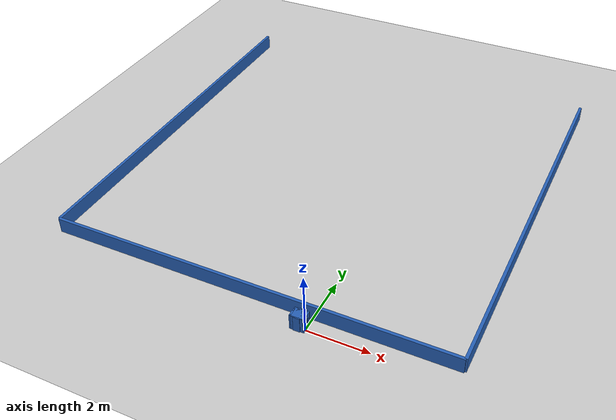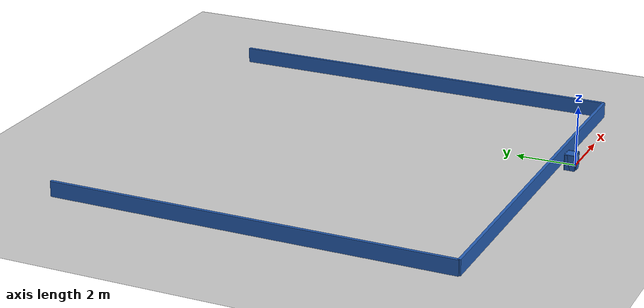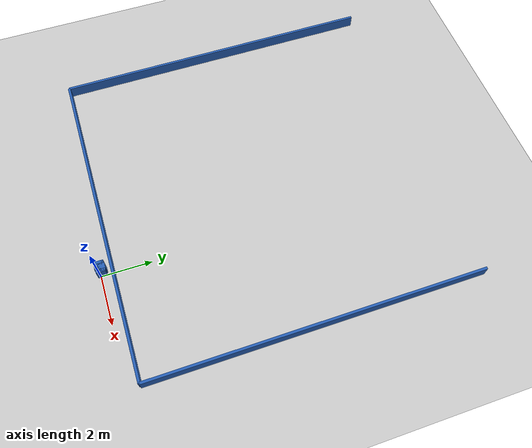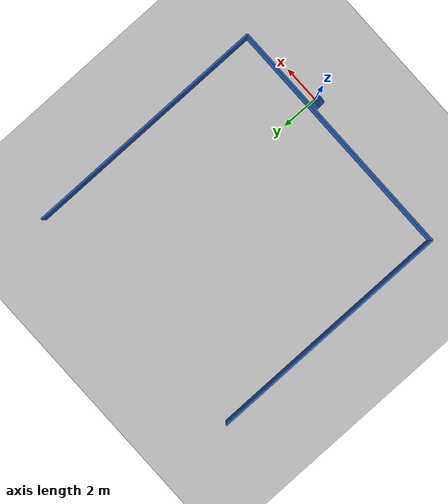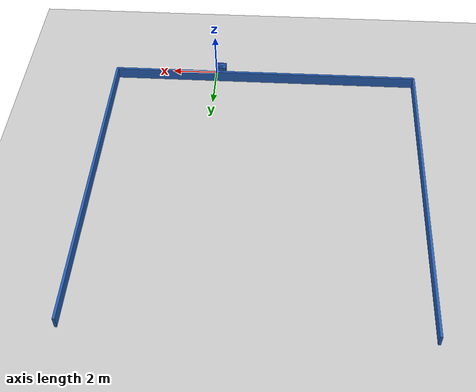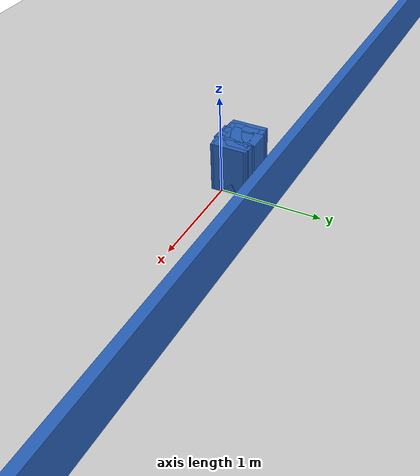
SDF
<?xml version="1.0" ?>
    <sdf version="1.5">
      <world name="default">
        <!-- A global light source -->
        <include>
          <uri>model://sun</uri>
        </include>
        <!-- A ground plane -->
        <include>
          <uri>model://ground_plane</uri>
        </include>

    <model name='libopen_space_final_T2B_61_96'>
      <static>1</static>
      <pose frame=''>-0.225000 0.075000 0.000000 0.000000 0.000000 0.000000</pose>
      <link name='link'>
        <inertial>
          <mass>1</mass>
          <inertia>
            <ixx>0.145833</ixx>
            <ixy>0</ixy>
            <ixz>0</ixz>
            <iyy>0.145833</iyy>
            <iyz>0</iyz>
            <izz>0.125</izz>
          </inertia>
        </inertial>
        <collision name='collision'>
          <geometry>
            <box>
              <size>0.19 0.34 1</size>
            </box>
          </geometry>
          <max_contacts>10</max_contacts>
          <surface>
            <contact>
              <ode/>
            </contact>
            <bounce/>
            <friction>
              <torsional>
                <ode/>
              </torsional>
              <ode/>
            </friction>
          </surface>
        </collision>
        <visual name='visual'>
          <geometry>
            <box>
              <size>0.19 0.34 1</size>
            </box>
          </geometry>
	    <material>
              <ambient>0.152000 0.379000 0.720000 1</ambient>
	      <diffuse>0.152000 0.379000 0.720000 1</diffuse>
          </material>
          <material>
            <script>
              <name>Gazebo/Grey</name>
              <uri>file://media/materials/scripts/gazebo.material</uri>
            </script>
          </material>
        </visual>
        <self_collide>0</self_collide>
        <kinematic>0</kinematic>
        <gravity>1</gravity>
      </link>
      <plugin name='libopen_space_final_T2B_61_96' filename='libopen_space_final_T2B_61_96.so'/>
    </model>

    <model name='libopen_space_final_T2B_99_64'>
      <static>1</static>
      <pose frame=''>-0.225000 0.075000 0.000000 0.000000 0.000000 0.000000</pose>
      <link name='link'>
        <inertial>
          <mass>1</mass>
          <inertia>
            <ixx>0.145833</ixx>
            <ixy>0</ixy>
            <ixz>0</ixz>
            <iyy>0.145833</iyy>
            <iyz>0</iyz>
            <izz>0.125</izz>
          </inertia>
        </inertial>
        <collision name='collision'>
          <geometry>
            <box>
              <size>0.36 0.33 1</size>
            </box>
          </geometry>
          <max_contacts>10</max_contacts>
          <surface>
            <contact>
              <ode/>
            </contact>
            <bounce/>
            <friction>
              <torsional>
                <ode/>
              </torsional>
              <ode/>
            </friction>
          </surface>
        </collision>
        <visual name='visual'>
          <geometry>
            <box>
              <size>0.36 0.33 1</size>
            </box>
          </geometry>
	    <material>
              <ambient>0.152000 0.379000 0.720000 1</ambient>
	      <diffuse>0.152000 0.379000 0.720000 1</diffuse>
          </material>
          <material>
            <script>
              <name>Gazebo/Grey</name>
              <uri>file://media/materials/scripts/gazebo.material</uri>
            </script>
          </material>
        </visual>
        <self_collide>0</self_collide>
        <kinematic>0</kinematic>
        <gravity>1</gravity>
      </link>
      <plugin name='libopen_space_final_T2B_99_64' filename='libopen_space_final_T2B_99_64.so'/>
    </model>

    <model name='libopen_space_final_T2B_81_4'>
      <static>1</static>
      <pose frame=''>-0.225000 0.075000 0.000000 0.000000 0.000000 0.000000</pose>
      <link name='link'>
        <inertial>
          <mass>1</mass>
          <inertia>
            <ixx>0.145833</ixx>
            <ixy>0</ixy>
            <ixz>0</ixz>
            <iyy>0.145833</iyy>
            <iyz>0</iyz>
            <izz>0.125</izz>
          </inertia>
        </inertial>
        <collision name='collision'>
          <geometry>
            <box>
              <size>0.47 0.31 1</size>
            </box>
          </geometry>
          <max_contacts>10</max_contacts>
          <surface>
            <contact>
              <ode/>
            </contact>
            <bounce/>
            <friction>
              <torsional>
                <ode/>
              </torsional>
              <ode/>
            </friction>
          </surface>
        </collision>
        <visual name='visual'>
          <geometry>
            <box>
              <size>0.47 0.31 1</size>
            </box>
          </geometry>
	    <material>
              <ambient>0.152000 0.379000 0.720000 1</ambient>
	      <diffuse>0.152000 0.379000 0.720000 1</diffuse>
          </material>
          <material>
            <script>
              <name>Gazebo/Grey</name>
              <uri>file://media/materials/scripts/gazebo.material</uri>
            </script>
          </material>
        </visual>
        <self_collide>0</self_collide>
        <kinematic>0</kinematic>
        <gravity>1</gravity>
      </link>
      <plugin name='libopen_space_final_T2B_81_4' filename='libopen_space_final_T2B_81_4.so'/>
    </model>

    <model name='libopen_space_final_T2B_111_91'>
      <static>1</static>
      <pose frame=''>-0.225000 0.075000 0.000000 0.000000 0.000000 0.000000</pose>
      <link name='link'>
        <inertial>
          <mass>1</mass>
          <inertia>
            <ixx>0.145833</ixx>
            <ixy>0</ixy>
            <ixz>0</ixz>
            <iyy>0.145833</iyy>
            <iyz>0</iyz>
            <izz>0.125</izz>
          </inertia>
        </inertial>
        <collision name='collision'>
          <geometry>
            <box>
              <size>0.22 0.41 1</size>
            </box>
          </geometry>
          <max_contacts>10</max_contacts>
          <surface>
            <contact>
              <ode/>
            </contact>
            <bounce/>
            <friction>
              <torsional>
                <ode/>
              </torsional>
              <ode/>
            </friction>
          </surface>
        </collision>
        <visual name='visual'>
          <geometry>
            <box>
              <size>0.22 0.41 1</size>
            </box>
          </geometry>
	    <material>
              <ambient>0.152000 0.379000 0.720000 1</ambient>
	      <diffuse>0.152000 0.379000 0.720000 1</diffuse>
          </material>
          <material>
            <script>
              <name>Gazebo/Grey</name>
              <uri>file://media/materials/scripts/gazebo.material</uri>
            </script>
          </material>
        </visual>
        <self_collide>0</self_collide>
        <kinematic>0</kinematic>
        <gravity>1</gravity>
      </link>
      <plugin name='libopen_space_final_T2B_111_91' filename='libopen_space_final_T2B_111_91.so'/>
    </model>

    <model name='libopen_space_final_T2B_66_3'>
      <static>1</static>
      <pose frame=''>-0.225000 0.075000 0.000000 0.000000 0.000000 0.000000</pose>
      <link name='link'>
        <inertial>
          <mass>1</mass>
          <inertia>
            <ixx>0.145833</ixx>
            <ixy>0</ixy>
            <ixz>0</ixz>
            <iyy>0.145833</iyy>
            <iyz>0</iyz>
            <izz>0.125</izz>
          </inertia>
        </inertial>
        <collision name='collision'>
          <geometry>
            <box>
              <size>0.20 0.39 1</size>
            </box>
          </geometry>
          <max_contacts>10</max_contacts>
          <surface>
            <contact>
              <ode/>
            </contact>
            <bounce/>
            <friction>
              <torsional>
                <ode/>
              </torsional>
              <ode/>
            </friction>
          </surface>
        </collision>
        <visual name='visual'>
          <geometry>
            <box>
              <size>0.20 0.39 1</size>
            </box>
          </geometry>
	    <material>
              <ambient>0.152000 0.379000 0.720000 1</ambient>
	      <diffuse>0.152000 0.379000 0.720000 1</diffuse>
          </material>
          <material>
            <script>
              <name>Gazebo/Grey</name>
              <uri>file://media/materials/scripts/gazebo.material</uri>
            </script>
          </material>
        </visual>
        <self_collide>0</self_collide>
        <kinematic>0</kinematic>
        <gravity>1</gravity>
      </link>
      <plugin name='libopen_space_final_T2B_66_3' filename='libopen_space_final_T2B_66_3.so'/>
    </model>

    <model name='libopen_space_final_T2B_121_6'>
      <static>1</static>
      <pose frame=''>-0.225000 0.075000 0.000000 0.000000 0.000000 0.000000</pose>
      <link name='link'>
        <inertial>
          <mass>1</mass>
          <inertia>
            <ixx>0.145833</ixx>
            <ixy>0</ixy>
            <ixz>0</ixz>
            <iyy>0.145833</iyy>
            <iyz>0</iyz>
            <izz>0.125</izz>
          </inertia>
        </inertial>
        <collision name='collision'>
          <geometry>
            <box>
              <size>0.26 0.21 1</size>
            </box>
          </geometry>
          <max_contacts>10</max_contacts>
          <surface>
            <contact>
              <ode/>
            </contact>
            <bounce/>
            <friction>
              <torsional>
                <ode/>
              </torsional>
              <ode/>
            </friction>
          </surface>
        </collision>
        <visual name='visual'>
          <geometry>
            <box>
              <size>0.26 0.21 1</size>
            </box>
          </geometry>
	    <material>
              <ambient>0.152000 0.379000 0.720000 1</ambient>
	      <diffuse>0.152000 0.379000 0.720000 1</diffuse>
          </material>
          <material>
            <script>
              <name>Gazebo/Grey</name>
              <uri>file://media/materials/scripts/gazebo.material</uri>
            </script>
          </material>
        </visual>
        <self_collide>0</self_collide>
        <kinematic>0</kinematic>
        <gravity>1</gravity>
      </link>
      <plugin name='libopen_space_final_T2B_121_6' filename='libopen_space_final_T2B_121_6.so'/>
    </model>

    <model name='libopen_space_final_T2B_115_72'>
      <static>1</static>
      <pose frame=''>-0.225000 0.075000 0.000000 0.000000 0.000000 0.000000</pose>
      <link name='link'>
        <inertial>
          <mass>1</mass>
          <inertia>
            <ixx>0.145833</ixx>
            <ixy>0</ixy>
            <ixz>0</ixz>
            <iyy>0.145833</iyy>
            <iyz>0</iyz>
            <izz>0.125</izz>
          </inertia>
        </inertial>
        <collision name='collision'>
          <geometry>
            <box>
              <size>0.39 0.24 1</size>
            </box>
          </geometry>
          <max_contacts>10</max_contacts>
          <surface>
            <contact>
              <ode/>
            </contact>
            <bounce/>
            <friction>
              <torsional>
                <ode/>
              </torsional>
              <ode/>
            </friction>
          </surface>
        </collision>
        <visual name='visual'>
          <geometry>
            <box>
              <size>0.39 0.24 1</size>
            </box>
          </geometry>
	    <material>
              <ambient>0.152000 0.379000 0.720000 1</ambient>
	      <diffuse>0.152000 0.379000 0.720000 1</diffuse>
          </material>
          <material>
            <script>
              <name>Gazebo/Grey</name>
              <uri>file://media/materials/scripts/gazebo.material</uri>
            </script>
          </material>
        </visual>
        <self_collide>0</self_collide>
        <kinematic>0</kinematic>
        <gravity>1</gravity>
      </link>
      <plugin name='libopen_space_final_T2B_115_72' filename='libopen_space_final_T2B_115_72.so'/>
    </model>

    <model name='libopen_space_final_T2B_79_93'>
      <static>1</static>
      <pose frame=''>-0.225000 0.075000 0.000000 0.000000 0.000000 0.000000</pose>
      <link name='link'>
        <inertial>
          <mass>1</mass>
          <inertia>
            <ixx>0.145833</ixx>
            <ixy>0</ixy>
            <ixz>0</ixz>
            <iyy>0.145833</iyy>
            <iyz>0</iyz>
            <izz>0.125</izz>
          </inertia>
        </inertial>
        <collision name='collision'>
          <geometry>
            <box>
              <size>0.19 0.35 1</size>
            </box>
          </geometry>
          <max_contacts>10</max_contacts>
          <surface>
            <contact>
              <ode/>
            </contact>
            <bounce/>
            <friction>
              <torsional>
                <ode/>
              </torsional>
              <ode/>
            </friction>
          </surface>
        </collision>
        <visual name='visual'>
          <geometry>
            <box>
              <size>0.19 0.35 1</size>
            </box>
          </geometry>
	    <material>
              <ambient>0.152000 0.379000 0.720000 1</ambient>
	      <diffuse>0.152000 0.379000 0.720000 1</diffuse>
          </material>
          <material>
            <script>
              <name>Gazebo/Grey</name>
              <uri>file://media/materials/scripts/gazebo.material</uri>
            </script>
          </material>
        </visual>
        <self_collide>0</self_collide>
        <kinematic>0</kinematic>
        <gravity>1</gravity>
      </link>
      <plugin name='libopen_space_final_T2B_79_93' filename='libopen_space_final_T2B_79_93.so'/>
    </model>

    <model name='libopen_space_final_T2B_125_67'>
      <static>1</static>
      <pose frame=''>-0.225000 0.075000 0.000000 0.000000 0.000000 0.000000</pose>
      <link name='link'>
        <inertial>
          <mass>1</mass>
          <inertia>
            <ixx>0.145833</ixx>
            <ixy>0</ixy>
            <ixz>0</ixz>
            <iyy>0.145833</iyy>
            <iyz>0</iyz>
            <izz>0.125</izz>
          </inertia>
        </inertial>
        <collision name='collision'>
          <geometry>
            <box>
              <size>0.47 0.36 1</size>
            </box>
          </geometry>
          <max_contacts>10</max_contacts>
          <surface>
            <contact>
              <ode/>
            </contact>
            <bounce/>
            <friction>
              <torsional>
                <ode/>
              </torsional>
              <ode/>
            </friction>
          </surface>
        </collision>
        <visual name='visual'>
          <geometry>
            <box>
              <size>0.47 0.36 1</size>
            </box>
          </geometry>
	    <material>
              <ambient>0.152000 0.379000 0.720000 1</ambient>
	      <diffuse>0.152000 0.379000 0.720000 1</diffuse>
          </material>
          <material>
            <script>
              <name>Gazebo/Grey</name>
              <uri>file://media/materials/scripts/gazebo.material</uri>
            </script>
          </material>
        </visual>
        <self_collide>0</self_collide>
        <kinematic>0</kinematic>
        <gravity>1</gravity>
      </link>
      <plugin name='libopen_space_final_T2B_125_67' filename='libopen_space_final_T2B_125_67.so'/>
    </model>

    <model name='libopen_space_final_T2B_90_95'>
      <static>1</static>
      <pose frame=''>-0.225000 0.075000 0.000000 0.000000 0.000000 0.000000</pose>
      <link name='link'>
        <inertial>
          <mass>1</mass>
          <inertia>
            <ixx>0.145833</ixx>
            <ixy>0</ixy>
            <ixz>0</ixz>
            <iyy>0.145833</iyy>
            <iyz>0</iyz>
            <izz>0.125</izz>
          </inertia>
        </inertial>
        <collision name='collision'>
          <geometry>
            <box>
              <size>0.23 0.31 1</size>
            </box>
          </geometry>
          <max_contacts>10</max_contacts>
          <surface>
            <contact>
              <ode/>
            </contact>
            <bounce/>
            <friction>
              <torsional>
                <ode/>
              </torsional>
              <ode/>
            </friction>
          </surface>
        </collision>
        <visual name='visual'>
          <geometry>
            <box>
              <size>0.23 0.31 1</size>
            </box>
          </geometry>
	    <material>
              <ambient>0.152000 0.379000 0.720000 1</ambient>
	      <diffuse>0.152000 0.379000 0.720000 1</diffuse>
          </material>
          <material>
            <script>
              <name>Gazebo/Grey</name>
              <uri>file://media/materials/scripts/gazebo.material</uri>
            </script>
          </material>
        </visual>
        <self_collide>0</self_collide>
        <kinematic>0</kinematic>
        <gravity>1</gravity>
      </link>
      <plugin name='libopen_space_final_T2B_90_95' filename='libopen_space_final_T2B_90_95.so'/>
    </model>

    <model name='libopen_space_final_T2B_105_38'>
      <static>1</static>
      <pose frame=''>-0.225000 0.075000 0.000000 0.000000 0.000000 0.000000</pose>
      <link name='link'>
        <inertial>
          <mass>1</mass>
          <inertia>
            <ixx>0.145833</ixx>
            <ixy>0</ixy>
            <ixz>0</ixz>
            <iyy>0.145833</iyy>
            <iyz>0</iyz>
            <izz>0.125</izz>
          </inertia>
        </inertial>
        <collision name='collision'>
          <geometry>
            <box>
              <size>0.15 0.24 1</size>
            </box>
          </geometry>
          <max_contacts>10</max_contacts>
          <surface>
            <contact>
              <ode/>
            </contact>
            <bounce/>
            <friction>
              <torsional>
                <ode/>
              </torsional>
              <ode/>
            </friction>
          </surface>
        </collision>
        <visual name='visual'>
          <geometry>
            <box>
              <size>0.15 0.24 1</size>
            </box>
          </geometry>
	    <material>
              <ambient>0.152000 0.379000 0.720000 1</ambient>
	      <diffuse>0.152000 0.379000 0.720000 1</diffuse>
          </material>
          <material>
            <script>
              <name>Gazebo/Grey</name>
              <uri>file://media/materials/scripts/gazebo.material</uri>
            </script>
          </material>
        </visual>
        <self_collide>0</self_collide>
        <kinematic>0</kinematic>
        <gravity>1</gravity>
      </link>
      <plugin name='libopen_space_final_T2B_105_38' filename='libopen_space_final_T2B_105_38.so'/>
    </model>

    <model name='libopen_space_final_T2B_77_65'>
      <static>1</static>
      <pose frame=''>-0.225000 0.075000 0.000000 0.000000 0.000000 0.000000</pose>
      <link name='link'>
        <inertial>
          <mass>1</mass>
          <inertia>
            <ixx>0.145833</ixx>
            <ixy>0</ixy>
            <ixz>0</ixz>
            <iyy>0.145833</iyy>
            <iyz>0</iyz>
            <izz>0.125</izz>
          </inertia>
        </inertial>
        <collision name='collision'>
          <geometry>
            <box>
              <size>0.19 0.14 1</size>
            </box>
          </geometry>
          <max_contacts>10</max_contacts>
          <surface>
            <contact>
              <ode/>
            </contact>
            <bounce/>
            <friction>
              <torsional>
                <ode/>
              </torsional>
              <ode/>
            </friction>
          </surface>
        </collision>
        <visual name='visual'>
          <geometry>
            <box>
              <size>0.19 0.14 1</size>
            </box>
          </geometry>
	    <material>
              <ambient>0.152000 0.379000 0.720000 1</ambient>
	      <diffuse>0.152000 0.379000 0.720000 1</diffuse>
          </material>
          <material>
            <script>
              <name>Gazebo/Grey</name>
              <uri>file://media/materials/scripts/gazebo.material</uri>
            </script>
          </material>
        </visual>
        <self_collide>0</self_collide>
        <kinematic>0</kinematic>
        <gravity>1</gravity>
      </link>
      <plugin name='libopen_space_final_T2B_77_65' filename='libopen_space_final_T2B_77_65.so'/>
    </model>

    <model name='libopen_space_final_T2B_123_13'>
      <static>1</static>
      <pose frame=''>-0.225000 0.075000 0.000000 0.000000 0.000000 0.000000</pose>
      <link name='link'>
        <inertial>
          <mass>1</mass>
          <inertia>
            <ixx>0.145833</ixx>
            <ixy>0</ixy>
            <ixz>0</ixz>
            <iyy>0.145833</iyy>
            <iyz>0</iyz>
            <izz>0.125</izz>
          </inertia>
        </inertial>
        <collision name='collision'>
          <geometry>
            <box>
              <size>0.38 0.37 1</size>
            </box>
          </geometry>
          <max_contacts>10</max_contacts>
          <surface>
            <contact>
              <ode/>
            </contact>
            <bounce/>
            <friction>
              <torsional>
                <ode/>
              </torsional>
              <ode/>
            </friction>
          </surface>
        </collision>
        <visual name='visual'>
          <geometry>
            <box>
              <size>0.38 0.37 1</size>
            </box>
          </geometry>
	    <material>
              <ambient>0.152000 0.379000 0.720000 1</ambient>
	      <diffuse>0.152000 0.379000 0.720000 1</diffuse>
          </material>
          <material>
            <script>
              <name>Gazebo/Grey</name>
              <uri>file://media/materials/scripts/gazebo.material</uri>
            </script>
          </material>
        </visual>
        <self_collide>0</self_collide>
        <kinematic>0</kinematic>
        <gravity>1</gravity>
      </link>
      <plugin name='libopen_space_final_T2B_123_13' filename='libopen_space_final_T2B_123_13.so'/>
    </model>

        <model name='bottom_wall'>
          <static>1</static>
          <pose frame=''>-2.25 0.5 0.000000 0.000000 0.000000 1.57079632</pose>
          <link name='link'>
            <inertial>
            <mass>1</mass>
            <inertia>
              <ixx>0.145833</ixx>
              <ixy>0</ixy>
              <ixz>0</ixz>
              <iyy>0.145833</iyy>
              <iyz>0</iyz>
              <izz>0.125</izz>
            </inertia>
            </inertial>
            <collision name='collision'>
            <geometry>
              <box>
              <size>0.1 13.5 1</size>
              </box>
            </geometry>
            <max_contacts>10</max_contacts>
            <surface>
              <contact>
              <ode/>
              </contact>
              <bounce/>
              <friction>
              <torsional>
                <ode/>
              </torsional>
              <ode/>
              </friction>
            </surface>
            </collision>
            <visual name='visual'>
            <geometry>
              <box>
              <size>0.1 13.5 1</size>
              </box>
            </geometry>
            <material>
              <ambient>0.152000 0.379000 0.720000 1</ambient>
            <diffuse>0.152000 0.379000 0.720000 1</diffuse>
            </material>
            <material>
              <script>
              <name>Gazebo/Grey</name>
              <uri>file://media/materials/scripts/gazebo.material</uri>
              </script>
            </material>
            </visual>
            <self_collide>0</self_collide>
            <kinematic>0</kinematic>
            <gravity>1</gravity>
          </link>
        </model>

        <model name='left_wall'>
          <static>1</static>
          <pose frame=''>-9 7.25 0.000000 0.000000 0.000000 0.000000</pose>
          <link name='link'>
            <inertial>
            <mass>1</mass>
            <inertia>
              <ixx>0.145833</ixx>
              <ixy>0</ixy>
              <ixz>0</ixz>
              <iyy>0.145833</iyy>
              <iyz>0</iyz>
              <izz>0.125</izz>
            </inertia>
            </inertial>
            <collision name='collision'>
            <geometry>
              <box>
              <size>0.1 13.5 1</size>
              </box>
            </geometry>
            <max_contacts>10</max_contacts>
            <surface>
              <contact>
              <ode/>
              </contact>
              <bounce/>
              <friction>
              <torsional>
                <ode/>
              </torsional>
              <ode/>
              </friction>
            </surface>
            </collision>
            <visual name='visual'>
            <geometry>
              <box>
              <size>0.1 13.5 1</size>
              </box>
            </geometry>
            <material>
              <ambient>0.152000 0.379000 0.720000 1</ambient>
            <diffuse>0.152000 0.379000 0.720000 1</diffuse>
            </material>
            <material>
              <script>
              <name>Gazebo/Grey</name>
              <uri>file://media/materials/scripts/gazebo.material</uri>
              </script>
            </material>
            </visual>
            <self_collide>0</self_collide>
            <kinematic>0</kinematic>
            <gravity>1</gravity>
          </link>
        </model>

        <model name='right_wall'>
          <static>1</static>
          <pose frame=''>4.5 7.25 0.000000 0.000000 0.000000 0.000000</pose>
          <link name='link'>
            <inertial>
            <mass>1</mass>
            <inertia>
              <ixx>0.145833</ixx>
              <ixy>0</ixy>
              <ixz>0</ixz>
              <iyy>0.145833</iyy>
              <iyz>0</iyz>
              <izz>0.125</izz>
            </inertia>
            </inertial>
            <collision name='collision'>
            <geometry>
              <box>
              <size>0.1 13.5 1</size>
              </box>
            </geometry>
            <max_contacts>10</max_contacts>
            <surface>
              <contact>
              <ode/>
              </contact>
              <bounce/>
              <friction>
              <torsional>
                <ode/>
              </torsional>
              <ode/>
              </friction>
            </surface>
            </collision>
            <visual name='visual'>
            <geometry>
              <box>
              <size>0.1 13.5 1</size>
              </box>
            </geometry>
            <material>
              <ambient>0.152000 0.379000 0.720000 1</ambient>
            <diffuse>0.152000 0.379000 0.720000 1</diffuse>
            </material>
            <material>
              <script>
              <name>Gazebo/Grey</name>
              <uri>file://media/materials/scripts/gazebo.material</uri>
              </script>
            </material>
            </visual>
            <self_collide>0</self_collide>
            <kinematic>0</kinematic>
            <gravity>1</gravity>
          </link>
        </model>

      </world>
    </sdf>"
